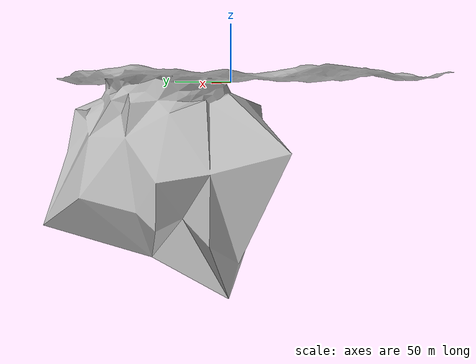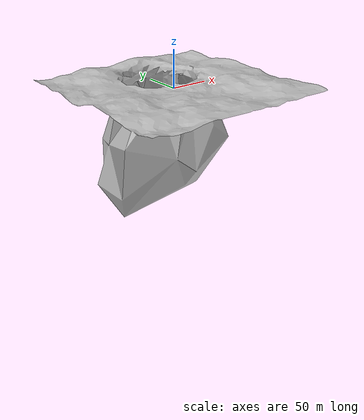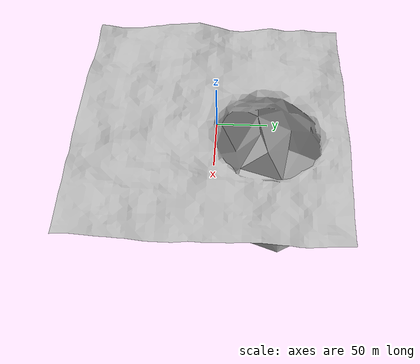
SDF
<?xml version="1.0" ?>
<sdf version="1.5">
  <model name="terrain">
      <static>1</static>
      <link name='link'>
        <collision name="collision">
            <geometry>
              <mesh>
                <uri>model://teren_crater_color/meshes/teren_crater_color_mare.dae</uri>
              </mesh>
            </geometry>
        <surface>
          <friction>
            <ode>
              <mu>100</mu>
              <mu2>50</mu2>
            </ode>
          </friction>
        </surface>
      </collision>
        <visual name='visual'>
          <geometry>
            <mesh>
              <uri>model://teren_crater_color/meshes/teren_crater_color_mare.dae</uri>
              <scale>1 1 1</scale>
            </mesh>
          </geometry>
        </visual>
      </link>
  </model>
</sdf>
